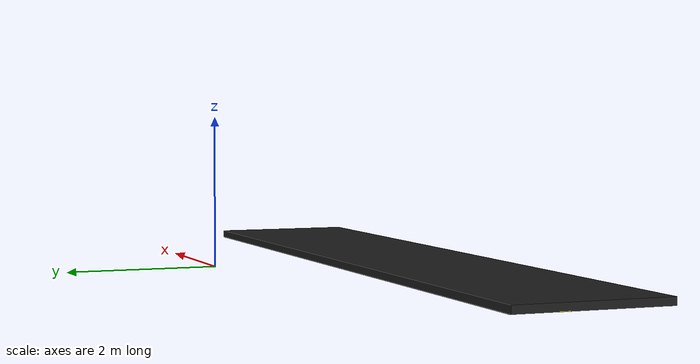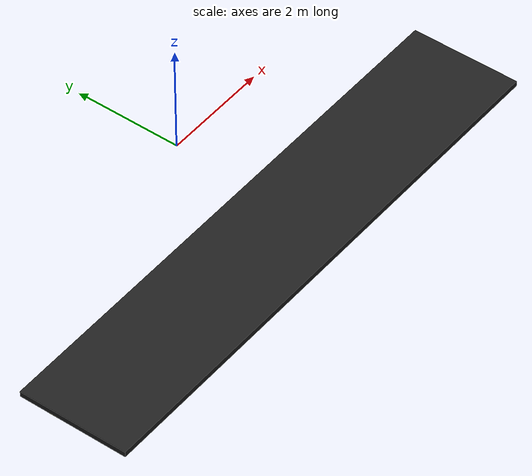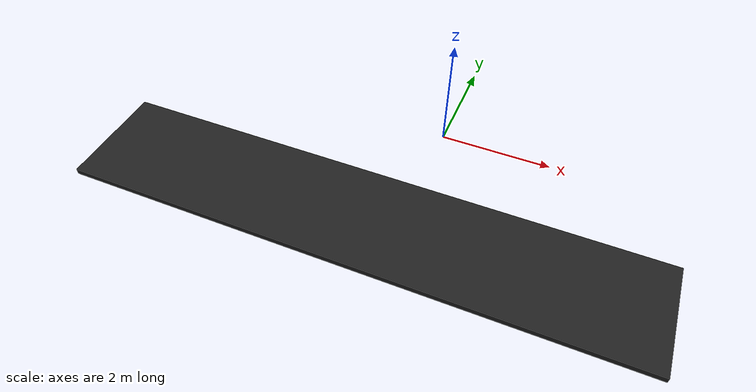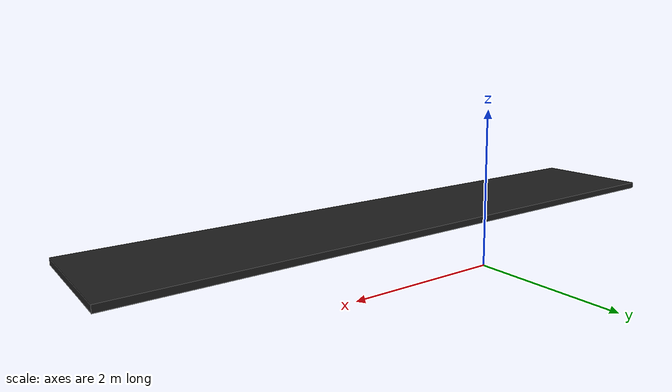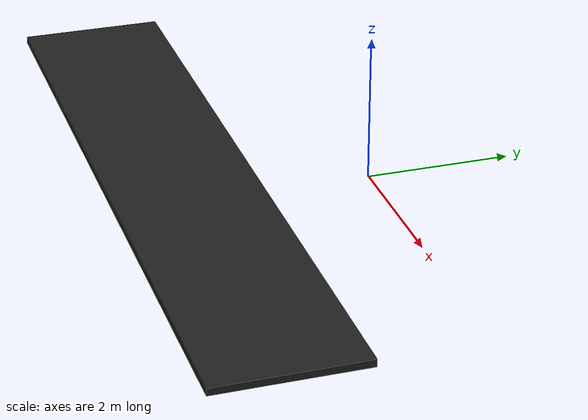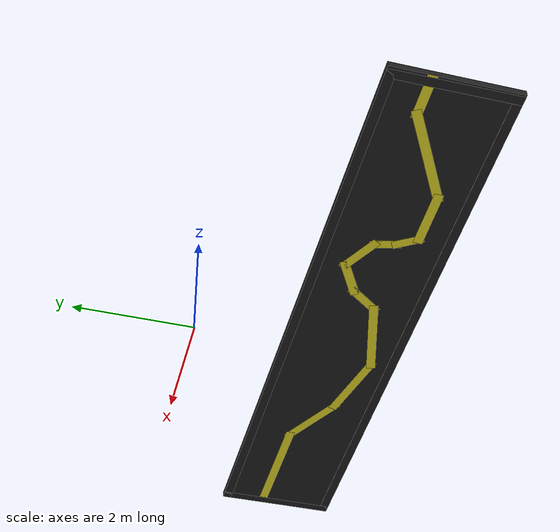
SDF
<?xml version='1.0'?>
<sdf version='1.6'>
  <model name='PISTA'>
    <pose frame=''>-0.634799 -2.48 0 0 -0 0</pose>
    <link name='Floor_0'>
      <collision name='Floor_0_Collision'>
        <geometry>
          <box>
            <size>10.0404 2.0108 0.1</size>
          </box>
        </geometry>
        <pose frame=''>0 0 0.05 0 -0 0</pose>
      </collision>
      <visual name='Floor_0_Visual'>
        <pose frame=''>0 0 0.05 0 -0 0</pose>
        <geometry>
          <box>
            <size>10.0404 2.0108 0.1</size>
          </box>
        </geometry>
        <material>
          <script>
            <uri>file://media/materials/scripts/gazebo.material</uri>
            <name>Gazebo/Black</name>
          </script>
          <ambient>0 0 0 0</ambient>
        </material>
        <meta>
          <layer>1</layer>
        </meta>
      </visual>
      <pose frame=''>0 -0 0.005 0 -0 0</pose>
    </link>
    <link name='Wall_10'>
      <collision name='Wall_10_Collision'>
        <geometry>
          <box>
            <size>2.01003 0.15 0.005</size>
          </box>
        </geometry>
        <pose frame=''>0 0 0.0025 0 -0 0</pose>
      </collision>
      <visual name='Wall_10_Visual'>
        <pose frame=''>0 0 0.0025 0 -0 0</pose>
        <geometry>
          <box>
            <size>2.01003 0.15 0.005</size>
          </box>
        </geometry>
        <material>
          <script>
            <uri>file://media/materials/scripts/gazebo.material</uri>
            <name>Gazebo/Black</name>
          </script>
          <ambient>0 0 0 0</ambient>
        </material>
        <meta>
          <layer>0</layer>
        </meta>
      </visual>
      <pose frame=''>-4.9102 -0 0 0 -0 -1.57617</pose>
    </link>
    <link name='Wall_12'>
      <collision name='Wall_12_Collision'>
        <geometry>
          <box>
            <size>10 0.15 0.005</size>
          </box>
        </geometry>
        <pose frame=''>0 0 0.0025 0 -0 0</pose>
      </collision>
      <visual name='Wall_12_Visual'>
        <pose frame=''>0 0 0.0025 0 -0 0</pose>
        <geometry>
          <box>
            <size>10 0.15 0.005</size>
          </box>
        </geometry>
        <material>
          <script>
            <uri>file://media/materials/scripts/gazebo.material</uri>
            <name>Gazebo/Black</name>
          </script>
          <ambient>0 0 0 0</ambient>
        </material>
        <meta>
          <layer>1</layer>
        </meta>
      </visual>
      <pose frame=''>0.009799 -0.93 0.005 0 -0 0</pose>
    </link>
    <link name='Wall_13'>
      <collision name='Wall_13_Collision'>
        <geometry>
          <box>
            <size>2.01003 0.15 0.005</size>
          </box>
        </geometry>
        <pose frame=''>0 0 0.0025 0 -0 0</pose>
      </collision>
      <visual name='Wall_13_Visual'>
        <pose frame=''>0 0 0.0025 0 -0 0</pose>
        <geometry>
          <box>
            <size>2.01003 0.15 0.005</size>
          </box>
        </geometry>
        <material>
          <script>
            <uri>file://media/materials/scripts/gazebo.material</uri>
            <name>Gazebo/Black</name>
          </script>
          <ambient>0 0 0 0</ambient>
        </material>
        <meta>
          <layer>1</layer>
        </meta>
      </visual>
      <pose frame=''>4.9398 -0 0.005 0 -0 1.56542</pose>
    </link>
    <link name='Wall_14'>
      <collision name='Wall_14_Collision'>
        <geometry>
          <box>
            <size>10 0.15 0.005</size>
          </box>
        </geometry>
        <pose frame=''>0 0 0.0025 0 -0 0</pose>
      </collision>
      <visual name='Wall_14_Visual'>
        <pose frame=''>0 0 0.0025 0 -0 0</pose>
        <geometry>
          <box>
            <size>10 0.15 0.005</size>
          </box>
        </geometry>
        <material>
          <script>
            <uri>file://media/materials/scripts/gazebo.material</uri>
            <name>Gazebo/Black</name>
          </script>
          <ambient>0 0 0 0</ambient>
        </material>
        <meta>
          <layer>1</layer>
        </meta>
      </visual>
      <pose frame=''>0.019799 0.93 0.005 0 -0 3.14159</pose>
    </link>
    <link name='Wall_15'>
      <collision name='Wall_15_Collision'>
        <geometry>
          <box>
            <size>2.01003 0.15 0.005</size>
          </box>
        </geometry>
        <pose frame=''>0 0 0.0025 0 -0 0</pose>
      </collision>
      <visual name='Wall_15_Visual'>
        <pose frame=''>0 0 0.0025 0 -0 0</pose>
        <geometry>
          <box>
            <size>2.01003 0.15 0.005</size>
          </box>
        </geometry>
        <material>
          <script>
            <uri>file://media/materials/scripts/gazebo.material</uri>
            <name>Gazebo/Black</name>
          </script>
          <ambient>0 0 0 0</ambient>
        </material>
        <meta>
          <layer>1</layer>
        </meta>
      </visual>
      <pose frame=''>-4.9102 -0 0.005 0 -0 -1.57617</pose>
    </link>
    <link name='Wall_16'>
      <collision name='Wall_16_Collision'>
        <geometry>
          <box>
            <size>0.75 0.15 0.01</size>
          </box>
        </geometry>
        <pose frame=''>0 0 0.003 0 -0 0</pose>
      </collision>
      <visual name='Wall_16_Visual'>
        <pose frame=''>0 0 0.003 0 -0 0</pose>
        <geometry>
          <box>
            <size>0.75 0.15 0.008</size>
          </box>
        </geometry>
        <material>
          <script>
            <uri>file://media/materials/scripts/gazebo.material</uri>
            <name>Gazebo/Yellow</name>
          </script>
          <ambient>1 1 1 1</ambient>
        </material>
        <meta>
          <layer>1</layer>
        </meta>
      </visual>
      <pose frame=''>-4.6452 0.36 0.005 0 -0 0</pose>
    </link>
    <link name='Wall_17'>
      <collision name='Wall_17_Collision'>
        <geometry>
          <box>
            <size>1.74732 0.15 0.01</size>
          </box>
        </geometry>
        <pose frame=''>0 0 0.003 0 -0 0</pose>
      </collision>
      <visual name='Wall_17_Visual'>
        <pose frame=''>0 0 0.003 0 -0 0</pose>
        <geometry>
          <box>
            <size>1.74732 0.15 0.01</size>
          </box>
        </geometry>
        <material>
          <script>
            <uri>file://media/materials/scripts/gazebo.material</uri>
            <name>Gazebo/Yellow</name>
          </script>
          <ambient>1 1 1 1</ambient>
        </material>
        <meta>
          <layer>1</layer>
        </meta>
      </visual>
      <pose frame=''>-3.6522 -0.037 0.005 0 -0 -0.520233</pose>
    </link>
    <link name='Wall_18'>
      <collision name='Wall_18_Collision'>
        <geometry>
          <box>
            <size>1 0.15 0.01</size>
          </box>
        </geometry>
        <pose frame=''>0 0 0.003 0 -0 0</pose>
      </collision>
      <visual name='Wall_18_Visual'>
        <pose frame=''>0 0 0.003 0 -0 0</pose>
        <geometry>
          <box>
            <size>1 0.15 0.01</size>
          </box>
        </geometry>
        <material>
          <script>
            <uri>file://media/materials/scripts/gazebo.material</uri>
            <name>Gazebo/Yellow</name>
          </script>
          <ambient>1 1 1 1</ambient>
        </material>
        <meta>
          <layer>1</layer>
        </meta>
      </visual>
      <pose frame=''>-2.5342 -0.434 0.005 0 -0 0</pose>
    </link>
    <link name='Wall_19'>
      <collision name='Wall_19_Collision'>
        <geometry>
          <box>
            <size>0.494723 0.15 0.01</size>
          </box>
        </geometry>
        <pose frame=''>0 0 0.003 0 -0 0</pose>
      </collision>
      <visual name='Wall_19_Visual'>
        <pose frame=''>0 0 0.003 0 -0 0</pose>
        <geometry>
          <box>
            <size>0.494723 0.15 0.01</size>
          </box>
        </geometry>
        <material>
          <script>
            <uri>file://media/materials/scripts/gazebo.material</uri>
            <name>Gazebo/Yellow</name>
          </script>
          <ambient>1 1 1 1</ambient>
        </material>
        <meta>
          <layer>1</layer>
        </meta>
      </visual>
      <pose frame=''>-2.0217 -0.2855 0.005 0 -0 1.03834</pose>
    </link>
    <link name='Wall_20'>
      <collision name='Wall_20_Collision'>
        <geometry>
          <box>
            <size>0.5 0.15 0.01</size>
          </box>
        </geometry>
        <pose frame=''>0 0 0.003 0 -0 0</pose>
      </collision>
      <visual name='Wall_20_Visual'>
        <pose frame=''>0 0 0.003 0 -0 0</pose>
        <geometry>
          <box>
            <size>0.5 0.15 0.01</size>
          </box>
        </geometry>
        <material>
          <script>
            <uri>file://media/materials/scripts/gazebo.material</uri>
            <name>Gazebo/Yellow</name>
          </script>
          <ambient>1 1 1 1</ambient>
        </material>
        <meta>
          <layer>1</layer>
        </meta>
      </visual>
      <pose frame=''>-1.8892 0.032 0.005 0 -0 1.31056</pose>
    </link>
    <link name='Wall_21'>
      <collision name='Wall_21_Collision'>
        <geometry>
          <box>
            <size>0.75 0.15 0.01</size>
          </box>
        </geometry>
        <pose frame=''>0 0 0.003 0 -0 0</pose>
      </collision>
      <visual name='Wall_21_Visual'>
        <pose frame=''>0 0 0.003 0 -0 0</pose>
        <geometry>
          <box>
            <size>0.75 0.15 0.01</size>
          </box>
        </geometry>
        <material>
          <script>
            <uri>file://media/materials/scripts/gazebo.material</uri>
            <name>Gazebo/Yellow</name>
          </script>
          <ambient>1 1 1 1</ambient>
        </material>
        <meta>
          <layer>1</layer>
        </meta>
      </visual>
      <pose frame=''>-1.5842 0.351 0.005 0 -0 0.523278</pose>
    </link>
    <link name='Wall_22'>
      <collision name='Wall_22_Collision'>
        <geometry>
          <box>
            <size>0.75 0.15 0.01</size>
          </box>
        </geometry>
        <pose frame=''>0 0 0.003 0 -0 0</pose>
      </collision>
      <visual name='Wall_22_Visual'>
        <pose frame=''>0 0 0.003 0 -0 0</pose>
        <geometry>
          <box>
            <size>0.75 0.15 0.01</size>
          </box>
        </geometry>
        <material>
          <script>
            <uri>file://media/materials/scripts/gazebo.material</uri>
            <name>Gazebo/Yellow</name>
          </script>
          <ambient>1 1 1 1</ambient>
        </material>
        <meta>
          <layer>1</layer>
        </meta>
      </visual>
      <pose frame=''>-1.0647 0.351 0.005 0 -0 -0.524112</pose>
    </link>
    <link name='Wall_23'>
      <collision name='Wall_23_Collision'>
        <geometry>
          <box>
            <size>0.670096 0.15 0.01</size>
          </box>
        </geometry>
        <pose frame=''>0 0 0.003 0 -0 0</pose>
      </collision>
      <visual name='Wall_23_Visual'>
        <pose frame=''>0 0 0.003 0 -0 0</pose>
        <geometry>
          <box>
            <size>0.670096 0.15 0.01</size>
          </box>
        </geometry>
        <material>
          <script>
            <uri>file://media/materials/scripts/gazebo.material</uri>
            <name>Gazebo/Yellow</name>
          </script>
          <ambient>1 1 1 1</ambient>
        </material>
        <meta>
          <layer>1</layer>
        </meta>
      </visual>
      <pose frame=''>-0.653201 -0.01 0.005 0 -0 -0.946524</pose>
    </link>
    <link name='Wall_24'>
      <collision name='Wall_24_Collision'>
        <geometry>
          <box>
            <size>1.50252 0.15 0.01</size>
          </box>
        </geometry>
        <pose frame=''>0 0 0.003 0 -0 0</pose>
      </collision>
      <visual name='Wall_24_Visual'>
        <pose frame=''>0 0 0.003 0 -0 0</pose>
        <geometry>
          <box>
            <size>1.50252 0.15 0.01</size>
          </box>
        </geometry>
        <material>
          <script>
            <uri>file://media/materials/scripts/gazebo.material</uri>
            <name>Gazebo/Yellow</name>
          </script>
          <ambient>1 1 1 1</ambient>
        </material>
        <meta>
          <layer>1</layer>
        </meta>
      </visual>
      <pose frame=''>0.150799 -0.4005 0.005 0 -0 -0.268651</pose>
    </link>
    <link name='Wall_25'>
      <collision name='Wall_25_Collision'>
        <geometry>
          <box>
            <size>1.36268 0.15 0.01</size>
          </box>
        </geometry>
        <pose frame=''>0 0 0.003 0 -0 0</pose>
      </collision>
      <visual name='Wall_25_Visual'>
        <pose frame=''>0 0 0.003 0 -0 0</pose>
        <geometry>
          <box>
            <size>1.36268 0.15 0.01</size>
          </box>
        </geometry>
        <material>
          <script>
            <uri>file://media/materials/scripts/gazebo.material</uri>
            <name>Gazebo/Yellow</name>
          </script>
          <ambient>1 1 1 1</ambient>
        </material>
        <meta>
          <layer>1</layer>
        </meta>
      </visual>
      <pose frame=''>1.3913 -0.434 0.005 0 -0 0.243179</pose>
    </link>
    <link name='Wall_26'>
      <collision name='Wall_26_Collision'>
        <geometry>
          <box>
            <size>1.25032 0.15 0.01</size>
          </box>
        </geometry>
        <pose frame=''>0 0 0.003 0 -0 0</pose>
      </collision>
      <visual name='Wall_26_Visual'>
        <pose frame=''>0 0 0.003 0 -0 0</pose>
        <geometry>
          <box>
            <size>1.25032 0.15 0.01</size>
          </box>
        </geometry>
        <material>
          <script>
            <uri>file://media/materials/scripts/gazebo.material</uri>
            <name>Gazebo/Yellow</name>
          </script>
          <ambient>1 1 1 1</ambient>
        </material>
        <meta>
          <layer>1</layer>
        </meta>
      </visual>
      <pose frame=''>2.4563 -0.013 0.005 0 -0 0.52343</pose>
    </link>
    <link name='Wall_27'>
      <collision name='Wall_27_Collision'>
        <geometry>
          <box>
            <size>2.006 0.15 0.01</size>
          </box>
        </geometry>
        <pose frame=''>0 0 0.003 0 -0 0</pose>
      </collision>
      <visual name='Wall_27_Visual'>
        <pose frame=''>0 0 0.003 0 -0 0</pose>
        <geometry>
          <box>
            <size>2.006 0.15 0.01</size>
          </box>
        </geometry>
        <material>
          <script>
            <uri>file://media/materials/scripts/gazebo.material</uri>
            <name>Gazebo/Yellow</name>
          </script>
          <ambient>1 1 1 1</ambient>
        </material>
        <meta>
          <layer>1</layer>
        </meta>
      </visual>
      <pose frame=''>3.8608 0.262 0.005 0 -0 0</pose>
    </link>
    <link name='Wall_6'>
      <collision name='Wall_6_Collision'>
        <geometry>
          <box>
            <size>10 0.15 0.005</size>
          </box>
        </geometry>
        <pose frame=''>0 0 0.0025 0 -0 0</pose>
      </collision>
      <visual name='Wall_6_Visual'>
        <pose frame=''>0 0 0.0025 0 -0 0</pose>
        <geometry>
          <box>
            <size>10 0.15 0.005</size>
          </box>
        </geometry>
        <material>
          <script>
            <uri>file://media/materials/scripts/gazebo.material</uri>
            <name>Gazebo/Black</name>
          </script>
          <ambient>0 0 0 0</ambient>
        </material>
        <meta>
          <layer>0</layer>
        </meta>
      </visual>
      <pose frame=''>0.009799 -0.93 0 0 -0 0</pose>
    </link>
    <link name='Wall_7'>
      <collision name='Wall_7_Collision'>
        <geometry>
          <box>
            <size>2.01003 0.15 0.005</size>
          </box>
        </geometry>
        <pose frame=''>0 0 0.0025 0 -0 0</pose>
      </collision>
      <visual name='Wall_7_Visual'>
        <pose frame=''>0 0 0.0025 0 -0 0</pose>
        <geometry>
          <box>
            <size>2.01003 0.15 0.005</size>
          </box>
        </geometry>
        <material>
          <script>
            <uri>file://media/materials/scripts/gazebo.material</uri>
            <name>Gazebo/Black</name>
          </script>
          <ambient>0 0 0 0</ambient>
        </material>
        <meta>
          <layer>0</layer>
        </meta>
      </visual>
      <pose frame=''>4.9398 -0 0 0 -0 1.56542</pose>
    </link>
    <link name='Wall_8'>
      <collision name='Wall_8_Collision'>
        <geometry>
          <box>
            <size>10 0.15 0.005</size>
          </box>
        </geometry>
        <pose frame=''>0 0 0.0025 0 -0 0</pose>
      </collision>
      <visual name='Wall_8_Visual'>
        <pose frame=''>0 0 0.0025 0 -0 0</pose>
        <geometry>
          <box>
            <size>10 0.15 0.005</size>
          </box>
        </geometry>
        <material>
          <script>
            <uri>file://media/materials/scripts/gazebo.material</uri>
            <name>Gazebo/Black</name>
          </script>
          <ambient>0 0 0 0</ambient>
        </material>
        <meta>
          <layer>0</layer>
        </meta>
      </visual>
      <pose frame=''>0.019799 0.93 0 0 -0 3.14159</pose>
    </link>
    <static>1</static>
  </model>
</sdf>
